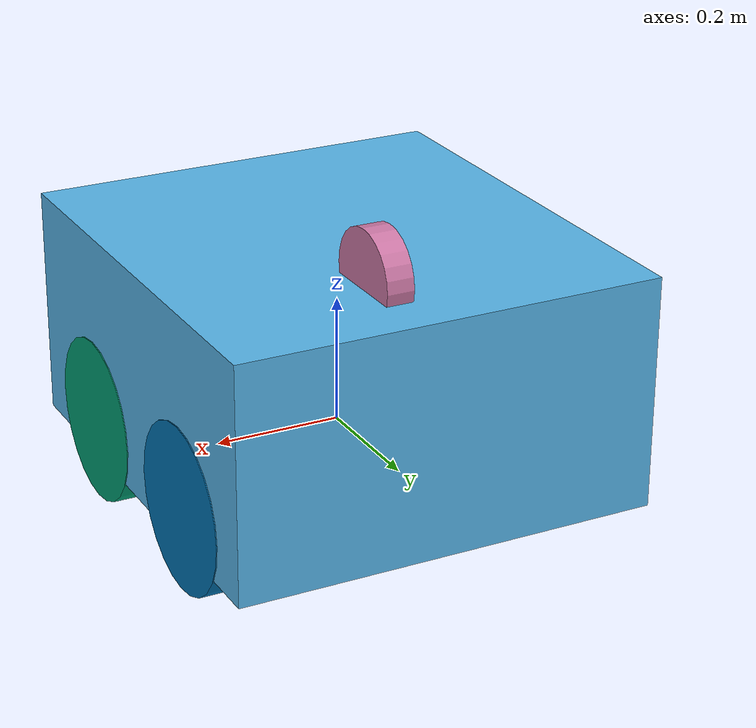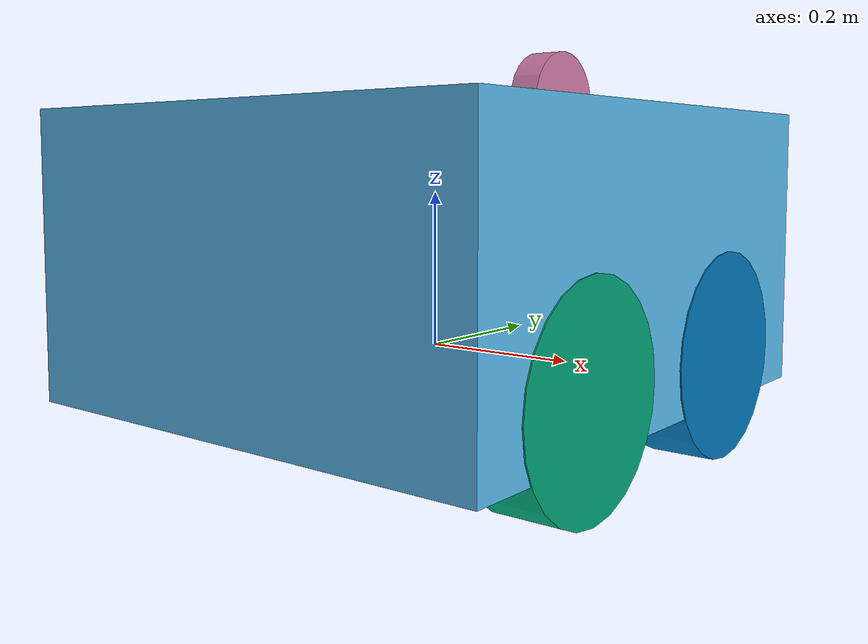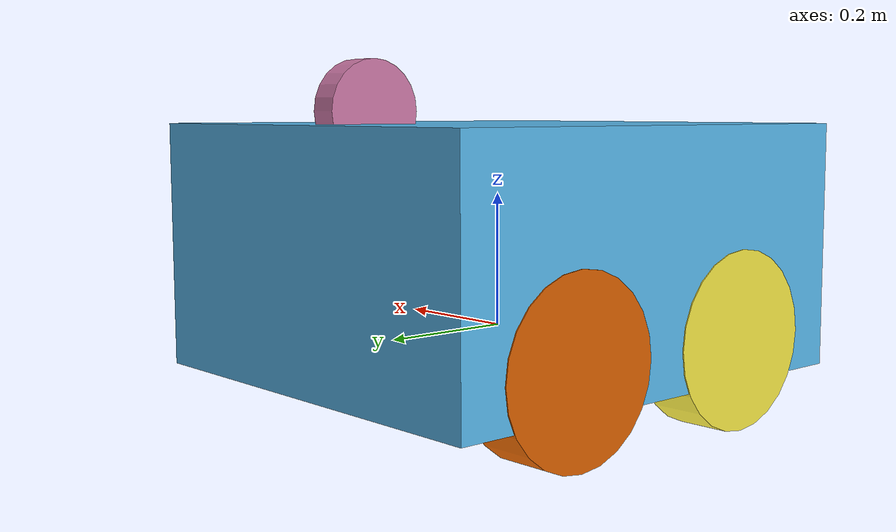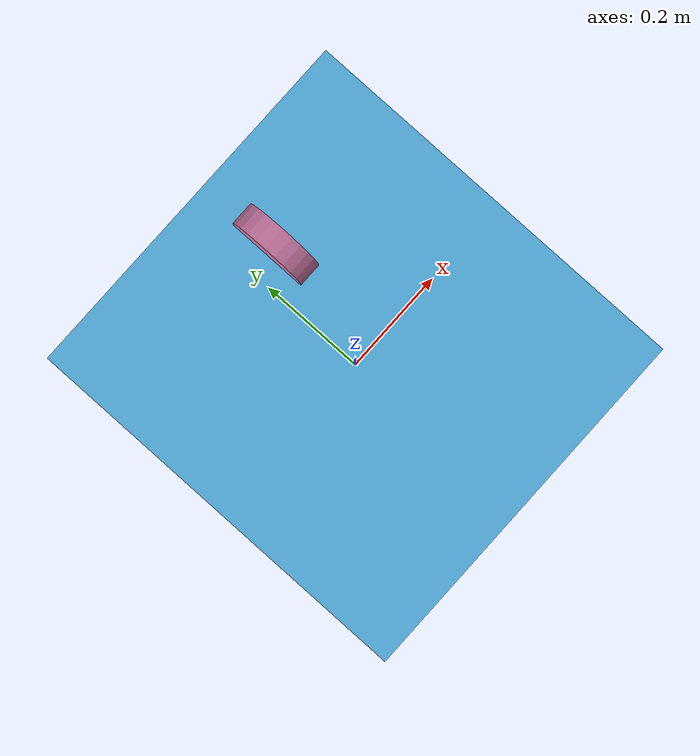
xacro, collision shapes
<?xml version="1.0"?>
<robot name="prodigimover" xmlns:xacro="http://www.ros.org/wiki/xacro">
    <xacro:include filename="$(find prodigimover_description)/urdf/prodigimover_base.xacro" />
    <xacro:include filename="$(find prodigimover_description)/urdf/prodigimover_inertia.xacro" />
    <xacro:include filename="$(find prodigimover_description)/urdf/prodigimover_wheel.xacro" />
    <xacro:include filename="$(find prodigimover_description)/urdf/prodigimover_lidar.xacro" />
    <xacro:include filename="$(find prodigimover_description)/urdf/prodigimover_camera.xacro" />
    <xacro:include filename="$(find prodigimover_description)/urdf/prodigimover_imu.xacro" />
    <xacro:include filename="$(find prodigimover_description)/urdf/prodigimover_skid_steer.xacro" />

    <!-- Chassis -->
    <xacro:prodigimover_base />

    <!-- Wheels -->
    <xacro:prodigimover_wheel xyz_pose="0.29462 -0.163 0.0" rpy_pose="-1.570796 0 0" side1="right" side2="front" />
    <xacro:prodigimover_wheel xyz_pose="-0.29462 -0.163 0.0" rpy_pose="-1.570796 0 0" side1="left" side2="front" />
    <xacro:prodigimover_wheel xyz_pose="0.29462 0.163 0.0" rpy_pose="-1.570796 0 0" side1="right" side2="back" />
    <xacro:prodigimover_wheel xyz_pose="-0.29462 0.163 0.0" rpy_pose="-1.570796 0 0" side1="left" side2="back" />

    <!-- LIDAR -->
    <xacro:prodigimover_lidar />

    <!-- Camera -->
    <xacro:prodigimover_zed_camera />

    <!-- IMU Sensor-->
    <xacro:prodigimover_imu />

    <!-- Skid Steer Plugin-->
    <xacro:prodigimover_skid_steer />

    <!-- Joints plugin -->
    <xacro:prodigimover_joints_state_publisher />

</robot>

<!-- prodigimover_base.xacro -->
<robot xmlns:xacro="http://www.ros.org/wiki/xacro">
    <xacro:macro name="prodigimover_base">
        <!-- Robot center to the ground -->
        <link name="robot_footprint" >
            <pose>0 0 0 0 0 0</pose>
        </link>

        <link name="base_link">
            <pose>0 0 0.1 0 0 0</pose>
            <visual>
                <origin xyz="0 0 0.122405" rpy="0 0 0" />
                <geometry>
                    <mesh filename="package://prodigimover_description/meshes/ProdigiMover_Base.stl" scale="0.001 0.001 0.001" />
                </geometry>
            </visual>
            <collision>
                <origin xyz="0 0 0.122405" rpy="0 0 0" />
                <geometry>
                    <box size="0.66602 0.72288 0.36481" />
                </geometry>
            </collision>
            <xacro:box_inertial x="0.66602" y="0.72288" z="0.36481" mass="10.0" />
        </link>

        <joint name="base_joint" type="fixed" >
            <origin xyz="0 0 0" rpy="0 0 0" />
            <parent link="robot_footprint" />
            <child link="base_link" />
        </joint>

        <!-- Base(Chassis)-->
        <gazebo reference="base_link">
            <material value="Gazebo/Blue" />
        </gazebo>
    </xacro:macro>
</robot>

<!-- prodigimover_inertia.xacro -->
<!-- Thanks to Martin Guenther
  see https://gitpose.com/uos/uos_tools/blob/fuerte/uos_common_urdf/common.xacro and
  see http://answers.gazebosim.org/question/4372/the-inertia-matrix-explained/ -->
<robot name="prodigimover" xmlns:xacro="http://ros.org/wiki/xacro">
  <property name="M_PI" value="3.1415926535897931" />

  <!-- see https://secure.wikimedia.org/wikipedia/en/wiki/List_of_moment_of_inertia_tensors -->

  <!-- #################### versions without origin #################### -->
  <xacro:macro name="sphere_inertial" params="radius mass">
    <inertial>
      <mass value="${mass}" />
      <origin xyz="0 0 0" />
      <inertia ixx="${0.4 * mass * radius * radius}" ixy="0.0" ixz="0.0"
        iyy="${0.4 * mass * radius * radius}" iyz="0.0"
        izz="${0.4 * mass * radius * radius}" />
    </inertial>
  </xacro:macro>

  <xacro:macro name="cylinder_inertial" params="radius length mass">
    <inertial>
      <mass value="${mass}" />
      <origin xyz="0 0 0" />
      <inertia ixx="${0.0833333 * mass * (3 * radius * radius + length * length)}" ixy="0.0" ixz="0.0"
        iyy="${0.0833333 * mass * (3 * radius * radius + length * length)}" iyz="0.0"
        izz="${0.5 * mass * radius * radius}" />
    </inertial>
  </xacro:macro>

  <xacro:macro name="box_inertial" params="x y z mass">
    <inertial>
      <mass value="${mass}" />
      <origin xyz="0 0 0" />
      <inertia ixx="${0.0833333 * mass * (y*y + z*z)}" ixy="0.0" ixz="0.0"
        iyy="${0.0833333 * mass * (x*x + z*z)}" iyz="0.0"
        izz="${0.0833333 * mass * (x*x + y*y)}" />
    </inertial>
  </xacro:macro>

  <!-- #################### versions with origin #################### -->
  <xacro:macro name="sphere_inertial_with_origin" params="radius mass *origin">
    <inertial>
      <mass value="${mass}" />
      <insert_block name="origin" />
      <inertia ixx="${0.4 * mass * radius * radius}" ixy="0.0" ixz="0.0"
        iyy="${0.4 * mass * radius * radius}" iyz="0.0"
        izz="${0.4 * mass * radius * radius}" />
    </inertial>
  </xacro:macro>

  <xacro:macro name="cylinder_inertial_with_origin" params="radius length mass *origin">
    <inertial>
      <mass value="${mass}" />
      <insert_block name="origin" />
      <inertia ixx="${0.0833333 * mass * (3 * radius * radius + length * length)}" ixy="0.0" ixz="0.0"
        iyy="${0.0833333 * mass * (3 * radius * radius + length * length)}" iyz="0.0"
        izz="${0.5 * mass * radius * radius}" />
    </inertial>
  </xacro:macro>

  <xacro:macro name="box_inertial_with_origin" params="x y z mass *origin">
    <inertial>
      <mass value="${mass}" />
      <insert_block name="origin" />
      <inertia ixx="${0.0833333 * mass * (y*y + z*z)}" ixy="0.0" ixz="0.0"
        iyy="${0.0833333 * mass * (x*x + z*z)}" iyz="0.0"
        izz="${0.0833333 * mass * (x*x + y*y)}" />
    </inertial>
  </xacro:macro>

</robot>

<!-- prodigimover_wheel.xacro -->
<robot xmlns:xacro="http://ros.org/wiki/xacro">
  <xacro:macro name="prodigimover_wheel" params="xyz_pose rpy_pose side1 side2">

    <link name='wheel_${side1}_${side2}_link'>
      <pose>0 0 0 0 0 0</pose>
      <visual>
        <origin xyz="0 0 0" rpy=" 0 0 1.570796"/>
        <geometry>
          <mesh filename="package://prodigimover_description/meshes/ProdigiMover_Wheel.stl" scale="0.001 0.001 0.001"/>
        </geometry>
      </visual>
      <collision>
        <origin xyz="0 0 0" rpy="0 1.570796 0 "/>
        <geometry>
          <cylinder radius="0.13" length="0.08"/>
        </geometry>
      </collision>
      <xacro:cylinder_inertial radius="0.13" length="0.08" mass="1.605"/>
    </link>

    <joint name="wheel_${side1}_${side2}_base" type="continuous">
      <origin xyz="${xyz_pose}" rpy="${rpy_pose}"/>
      <parent link="base_link"/>
      <child link="wheel_${side1}_${side2}_link"/>
      <joint_properties damping="0.1" friction="0.1"/>
    </joint>

    <gazebo reference="wheel_${side1}_${side2}_link">
      <material value="Gazebo/FlatBlack"/>
      <mu1>1.16</mu1>
      <mu2>1.16</mu2>
      <kp>5000000.0</kp>
      <kd>10.0</kd>
      <maxVel>4.0</maxVel>
      <fdir1>0 0 0</fdir1>
      <turnGravityOff>false</turnGravityOff>
    </gazebo>

  <!-- Transmission is important to link the joints and the controller -->
    <transmission name="wheel_${side1}_${side2}_trans">
      <type>transmission_interface/SimpleTransmission</type>
      <joint name="wheel_${side1}_${side2}_base"/>
      <actuator name="wheel_${side1}_${side2}_base_motor">
        <hardwareInterface>EffortJointInterface</hardwareInterface>
        <mechanicalReduction>1</mechanicalReduction>
      </actuator>
    </transmission>

  </xacro:macro>
 </robot>

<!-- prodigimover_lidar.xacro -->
<robot xmlns:xacro="http://www.ros.org/wiki/xacro">
    <xacro:macro name="prodigimover_lidar" >

        <link name="scan_link" >
            <pose>0 0 0 0 0 0</pose>
            <visual>
                <origin xyz="0 0 0" rpy="1.570796 0 -1.570796" />
                <geometry>
                    <mesh filename="package://prodigimover_description/meshes/ProdigiMover_YDLidar_G2.stl" scale="0.001 0.001 0.001" />
                </geometry>
            </visual>
            <collision>
                <origin xyz="0 0 0" rpy="1.570796 0 -1.570796" />
                <geometry>
                    <cylinder radius="0.0737" length="0.0425"/>
                </geometry>
            </collision>
            <xacro:cylinder_inertial radius="0.0737" length="0.0425" mass="0.5" />
        </link>

        <joint name="scan_joint" type="fixed">
            <origin xyz="0.045 0.21 0.322405" rpy="0 0 0" />
            <parent link="base_link" />
            <child link="scan_link" />
            <axis xyz="0 0 1" />
        </joint>

        <!-- LIDAR -->
        <gazebo reference="scan_link" >
            <material value="Gazebo/Red" />
            <sensor type="ray" name="lidar" >
                <tf_prefix>prodigimover</tf_prefix>
                <pose>0 0 0 0 0 0</pose>
                <always_on>true</always_on>
                <visualize>false</visualize>
                <update_rate>10</update_rate>
                <ray>
                    <scan>
                        <horizontal>
                            <samples>720</samples>
                            <resolution>1</resolution>
                            <min_angle>-3.141592</min_angle>
                            <max_angle>3.141592</max_angle>
                        </horizontal>
                    </scan>
                    <range>
                        <min>0.12</min>
                        <max>16.0</max>
                        <resolution>0.03</resolution>
                    </range>
                    <noise>
                        <type>gaussian</type>
                        <mean>0.0</mean>
                        <stddev>0.01</stddev>
                    </noise>
                </ray>
                <plugin name="laser_scan_plugin" filename="libgazebo_ros_laser.so" >
                    <output_type>sensor_msgs/LaserScan</output_type>
                    <robotNamespace>prodigimover</robotNamespace>
                    <topicName>scan</topicName>
                    <frameName>scan_link</frameName>
                </plugin>
            </sensor>
        </gazebo>
    </xacro:macro>
</robot>

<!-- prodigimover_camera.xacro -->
<robot xmlns:xacro="http://www.ros.org/wiki/xacro">
    <xacro:macro name="prodigimover_zed_camera">
        <link name="zed_camera_link">
            <pose>0 0.01525 0 0 0 -1.570796</pose>
            <visual>
                <origin xyz="0 0 0" rpy="0 0 0" />
                <geometry>
                    <mesh filename="package://prodigimover_description/meshes/ProdigiMover_Zedmini_Camera.stl" scale="0.001 0.001 0.001" />
                </geometry>
            </visual>
            <collision>
                <origin xyz="0 0 0" rpy="0 0 0" />
                <geometry>
                    <box size="0.0305 0.01245 0.0265" />
                </geometry>
            </collision>
            <xacro:box_inertial x="0.0305" y="0.01245" z="0.0265" mass="0.5" />
        </link>
        <joint name="zed_camera_joint" type="fixed" >
            <origin xyz="0 -0.321 0.230905" rpy="0 0 0" />
            <parent link="base_link"/>
            <child link="zed_camera_link"/>
        </joint>

        <joint name="zed_camera_optical_left_joint" type="fixed">
             <origin xyz="0 0.01525 0" rpy="0 0 0" />
             <parent link="zed_camera_link" />
             <child link="zed_camera_optical_left_link" />
        </joint>
        <link name="zed_camera_optical_left_link" />

        <joint name="zed_camera_optical_right_joint" type="fixed">
             <origin xyz="0 -0.01525 0" rpy="0 0 0" />
             <parent link="zed_camera_link" />
             <child link="zed_camera_optical_right_link" />
        </joint>
        <link name="zed_camera_optical_right_link" />

        <!--Zed_Camera Stereo Camera Plugin -->
        <gazebo reference="zed_camera_link" >
            <material value="Gazebo/Yellow" />
            <sensor name="stereo_camera" type="multicamera" >
                <update_rate>10.0</update_rate>
                <!-- math.atan(320 / 687.8065795898438) * 2 -->
                <visualize>true</visualize>
                <camera name="left" >
                    <pose>0 0.01525 0 0 0 -1.570796</pose>
                    <horizontal_fov>1.3962634</horizontal_fov>
                    <image>
                        <width>800</width>
                        <height>800</height>
                        <format>R8G8B8</format>
                    </image>
                    <clip>
                        <near>0.02</near>
                        <far>300</far>
                    </clip>
                    <noise>
                        <type>gaussian</type>
                        <mean>0.0</mean>
                        <stddev>0.007</stddev>
                    </noise>
                </camera>
                <camera name="right" >
                    <pose>0 -0.01525 0 0 0 -1.570796</pose>
                    <horizontal_fov>1.3962634</horizontal_fov>
                    <image>
                        <width>800</width>
                        <height>800</height>
                        <format>R8G8B8</format>
                    </image>
                    <clip>
                        <near>0.02</near>
                        <far>300</far>
                    </clip>
                    <noise>
                        <type>gaussian</type>
                        <mean>0.0</mean>
                        <stddev>0.007</stddev>
                    </noise>
                </camera>
                <plugin name="stereo_camera_controller" filename="libgazebo_ros_multicamera.so">
                    <alwaysOn>true</alwaysOn>
                    <updateRate>10.0</updateRate>
                    <robotNamespace>prodigimover</robotNamespace>
                    <cameraName>zed_camera</cameraName>
                    <imageTopicName>image_raw</imageTopicName>
                    <cameraInfoTopicName>camera_info</cameraInfoTopicName>
                    <leftFrameName>zed_camera_optical_left_link</leftFrameName>
                    <rightFrameName>zed_camera_optical_right_link</rightFrameName>
                    <hackBaseline>0.03</hackBaseline>
                    <distortionK1>0.0</distortionK1>
                    <distortionK2>0.0</distortionK2>
                    <distortionK3>0.0</distortionK3>
                    <distortionT1>0.0</distortionT1>
                    <distortionT2>0.0</distortionT2>
                </plugin>
            </sensor>
        </gazebo>

    </xacro:macro>
</robot>

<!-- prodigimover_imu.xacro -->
<robot xmlns:xacro="http://www.ros.org/wiki/xacro">
    <xacro:macro name="prodigimover_imu" >
        <!-- IMU Sensor-->
        <link name="imu_link">
            <pose>0 0 0 0 0 0</pose>
            <visual>
                <origin xyz="0 0 0.127405" rpy="0 0 0" />
                <geometry>
                    <mesh filename="package://prodigimover_description/meshes/ProdigiMover_IMU.stl" scale="0.001 0.001 0.001"/>
                </geometry>
            </visual>
            <collision>
                <origin xyz="0 0 0.127405" rpy="0 0 0" />
                <geometry>
                    <box size="0.026 0.0155 0.0016" />
                </geometry>
            </collision>
            <xacro:box_inertial x="0.026" y="0.0155" z="0.0016" mass="0.001" />
        </link>

        <joint name="imu_joint" type="fixed">
            <origin xyz="0 0 0.0016" rpy="0.0 0.0 0.0"/>
            <parent link="base_link"/>
            <child link="imu_link"/>
        </joint>

        <!-- IMU Sensor -->
        <gazebo reference="imu_link" >
            <gravity>true</gravity>
            <sensor name="imu_sensor" type="imu">
                <always_on>true</always_on>
                <update_rate>10.0</update_rate>
                <visualize>true</visualize>
                <topic>imu</topic>
                <plugin name="imu_plugin" filename="libgazebo_ros_imu_sensor.so" >
                    <robotNamespace>prodigimover</robotNamespace>
                    <topicName>imu</topicName>
                    <bodyName>imu_link</bodyName>
                    <updateRateHZ>10.0</updateRateHZ>
                    <gaussianNoise>0.0</gaussianNoise>
                    <xyzOffset>0 0 0</xyzOffset>
                    <rpyOffset>0 0 0</rpyOffset>
                    <frameName>imu_link</frameName>
                    <initialOrientationAsReference>false</initialOrientationAsReference>
                    <imu>
                        <angular_velocity>
                            <x>
                            <noise>
                                <type>gaussian</type>
                                <rate>
                                <mean>0.0</mean>
                                <stddev>2e-4</stddev>
                                <bias_mean>0.0000075</bias_mean>
                                <bias_stddev>0.0000008</bias_stddev>
                                </rate>
                            </noise>
                            </x>
                            <y>
                            <noise>
                                <type>gaussian</type>
                                <rate>
                                <mean>0.0</mean>
                                <stddev>2e-4</stddev>
                                <bias_mean>0.0000075</bias_mean>
                                <bias_stddev>0.0000008</bias_stddev>
                                </rate>
                            </noise>
                            </y>
                            <z>
                            <noise>
                                <type>gaussian</type>
                                <rate>
                                <mean>0.0</mean>
                                <stddev>2e-4</stddev>
                                <bias_mean>0.0000075</bias_mean>
                                <bias_stddev>0.0000008</bias_stddev>
                                </rate>
                            </noise>
                            </z>
                        </angular_velocity>
                        <linear_acceleration>
                            <x>
                            <noise>
                                <type>gaussian</type>
                                <mean>0.0</mean>
                                <stddev>1.7e-2</stddev>
                                <bias_mean>0.1</bias_mean>
                                <bias_stddev>0.001</bias_stddev>
                            </noise>
                            </x>
                            <y>
                            <noise>
                                <type>gaussian</type>
                                <mean>0.0</mean>
                                <stddev>1.7e-2</stddev>
                                <bias_mean>0.1</bias_mean>
                                <bias_stddev>0.001</bias_stddev>
                            </noise>
                            </y>
                            <z>
                            <noise>
                                <type>gaussian</type>
                                <mean>0.0</mean>
                                <stddev>1.7e-2</stddev>
                                <bias_mean>0.1</bias_mean>
                                <bias_stddev>0.001</bias_stddev>
                            </noise>
                            </z>
                        </linear_acceleration>
                    </imu>
                </plugin>
                <pose>0 0 0 0 0 0</pose>
            </sensor>
        </gazebo>
    </xacro:macro>
</robot>
